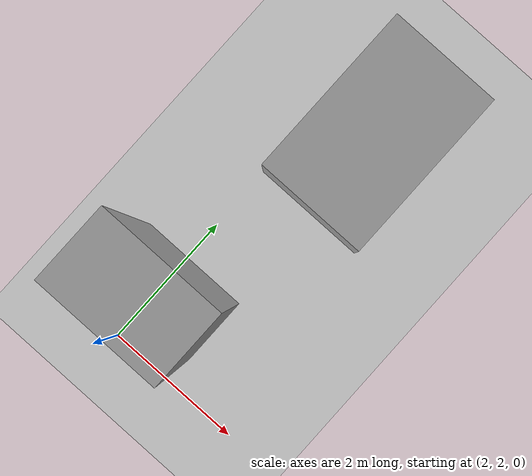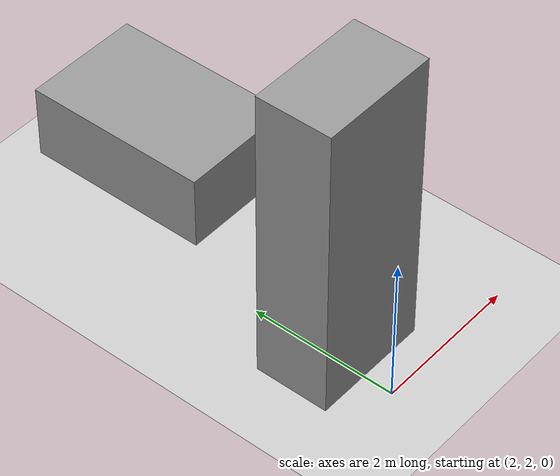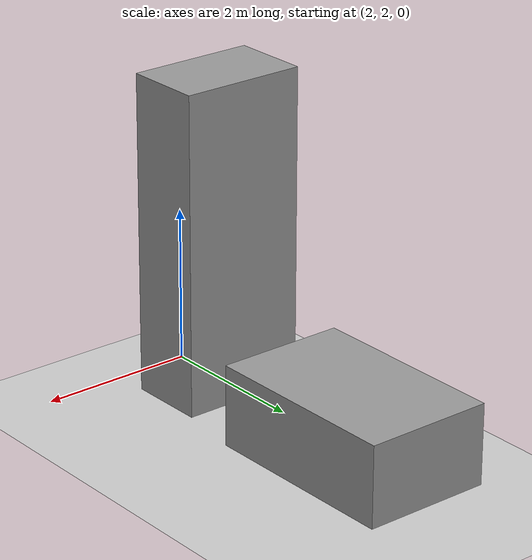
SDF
<sdf version="1.5">
 <world name="default">
  <light name="sun" type="directional">
   <pose>0 0 10 0 -0 0</pose>
   <diffuse>0.8 0.8 0.8 1</diffuse>
   <specular>0.2 0.2 0.2 1</specular>
   <attenuation>
    <range>1000</range>
    <constant>0.9</constant>
    <linear>0.01</linear>
    <quadratic>0.001</quadratic>
   </attenuation>
   <direction>-0.5 0.1 -0.9</direction>
  </light>
  <model name="ground_plane">
   <static>1</static>
   <link name="link">
    <collision name="collision">
     <geometry><plane><normal>0 0 1</normal><size>100 100</size></plane></geometry>
     <surface><friction><ode><mu>100</mu><mu2>50</mu2></ode></friction></surface>
    </collision>
    <visual name="visual">
     <cast_shadows>0</cast_shadows>
     <geometry><plane><normal>0 0 1</normal><size>100 100</size></plane></geometry>
     <material>
      <script><uri>file://media/materials/scripts/gazebo.material</uri><name>Gazebo/Grey</name></script>
     </material>
    </visual>
   </link>
  </model>
  <physics name="default_physics" default="0" type="ode">
   <max_step_size>0.001</max_step_size>
   <real_time_factor>1</real_time_factor>
   <real_time_update_rate>1000</real_time_update_rate>
   <gravity>0 0 -9.8</gravity>
   <magnetic_field>6e-06 2.3e-05 -4.2e-05</magnetic_field>
  </physics>
  <scene><ambient>0.4 0.4 0.4 1</ambient><background>0.7 0.7 0.7 1</background><shadows>1</shadows></scene>
  <spherical_coordinates>
   <surface_model>EARTH_WGS84</surface_model>
   <latitude_deg>0</latitude_deg>
   <longitude_deg>0</longitude_deg>
   <elevation>0</elevation>
   <heading_deg>0</heading_deg>
  </spherical_coordinates>
  <model name="unit_box_3">
   <pose>2.12842 2.90583 2.04167 0 -1e-06 -0.000665</pose>
   <link name="link">
    <inertial>
     <mass>1</mass>
     <inertia>
      <ixx>0.166667</ixx>
      <ixy>0</ixy>
      <ixz>0</ixz>
      <iyy>0.166667</iyy>
      <iyz>0</iyz>
      <izz>0.166667</izz>
     </inertia>
    </inertial>
    <collision name="collision"><geometry><box><size>1.61284 1 4.08334</size></box></geometry></collision>
    <visual name="visual">
     <geometry><box><size>1.61284 1 4.08334</size></box></geometry>
     <material>
      <script><name>Gazebo/Grey</name><uri>file://media/materials/scripts/gazebo.material</uri></script>
     </material>
    </visual>
   </link>
  </model>
  <model name="unit_box_4">
   <pose>2.82393 6.17235 0.965574 0 -0.000311 -0.000284</pose>
   <link name="link">
    <inertial>
     <mass>1</mass>
     <inertia>
      <ixx>0.166667</ixx>
      <ixy>0</ixy>
      <ixz>0</ixz>
      <iyy>0.166667</iyy>
      <iyz>0</iyz>
      <izz>0.166667</izz>
     </inertia>
    </inertial>
    <collision name="collision"><geometry><box><size>1.6 2.5 1</size></box></geometry></collision>
    <visual name="visual">
     <geometry><box><size>1.6 2.5 1</size></box></geometry>
     <material>
      <script><name>Gazebo/Grey</name><uri>file://media/materials/scripts/gazebo.material</uri></script>
     </material>
    </visual>
   </link>
  </model>
 </world>
</sdf>
